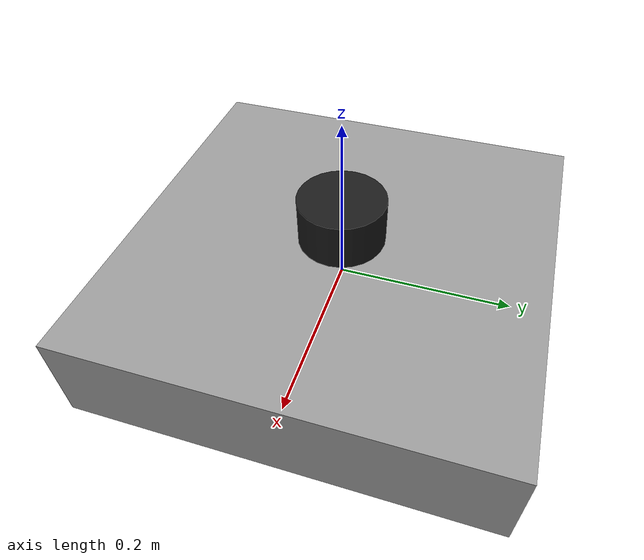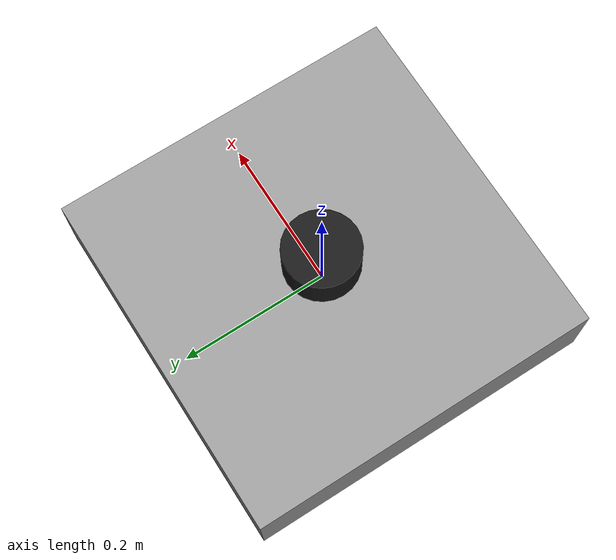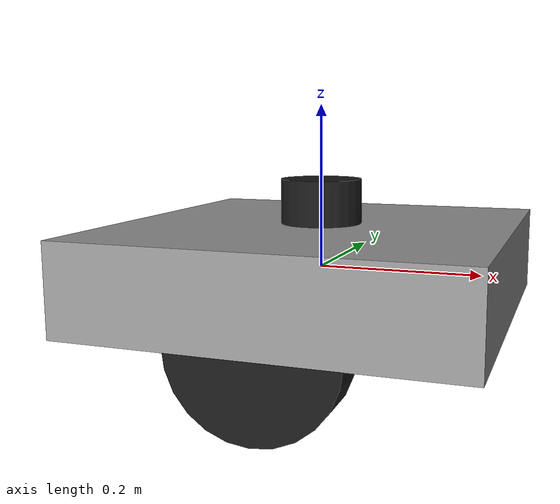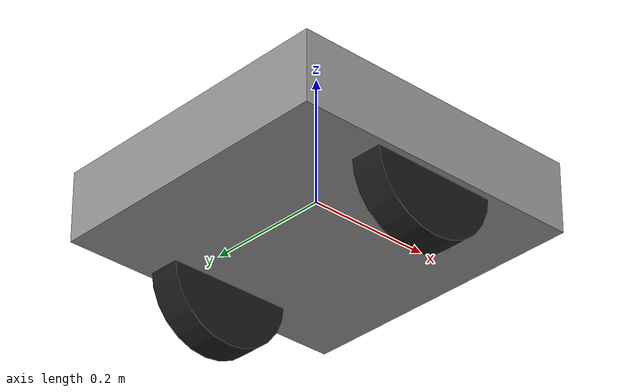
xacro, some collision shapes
<?xml version="1.0"?>
<robot name="drone" xmlns:xacro="http://ros.org/wiki/xacro">

  <!-- Properties -->
  <xacro:property name="PI" value="3.1415926535897931"/>
  <xacro:property name="drone_mass" value="2.0"/>
  <xacro:property name="lidar_mass" value="0.1"/>
  <xacro:property name="imu_mass" value="0.01"/>

  <!-- Materials -->
  <material name="grey">
    <color rgba="0.6 0.6 0.6 1"/>
  </material>

  <material name="black">
    <color rgba="0.1 0.1 0.1 1"/>
  </material>

  <material name="blue">
    <color rgba="0.1 0.1 0.8 1"/>
  </material>

  <!-- Base link (drone body) -->
  <link name="base_link">
    <inertial>
      <mass value="2.0"/>
      <origin xyz="0 0 0" rpy="0 0 0"/>
      <inertia ixx="0.0347563" ixy="0.0" ixz="0.0"
               iyy="0.0458929" iyz="0.0"
               izz="0.0977" />
    </inertial>

    <visual>
      <origin xyz="0 0 0" rpy="0 0 0"/>
      <geometry>
        <mesh filename="package://drone_rl/meshes/quadrotor_base.dae" scale="1 1 1"/>
      </geometry>
    </visual>

    <collision>
      <origin xyz="0 0 0" rpy="0 0 0"/>
      <geometry>
        <box size="0.47 0.47 0.11"/>
      </geometry>
    </collision>
  </link>

  <!-- Simplified visual for when mesh is not available -->
  <link name="base_link_visual">
    <visual>
      <origin xyz="0 0 0" rpy="0 0 0"/>
      <geometry>
        <box size="0.47 0.47 0.11"/>
      </geometry>
      <material name="grey"/>
    </visual>
  </link>

  <joint name="base_visual_joint" type="fixed">
    <parent link="base_link"/>
    <child link="base_link_visual"/>
    <origin xyz="0 0 0" rpy="0 0 0"/>
  </joint>

  <!-- LiDAR sensor -->
  <link name="lidar_link">
    <inertial>
      <mass value="0.1"/>
      <origin xyz="0 0 0" rpy="0 0 0"/>
      <inertia ixx="0.000166667" ixy="0.0" ixz="0.0"
               iyy="0.000166667" iyz="0.0"
               izz="0.000166667"/>
    </inertial>

    <visual>
      <origin xyz="0 0 0" rpy="0 0 0"/>
      <geometry>
        <cylinder radius="0.05" length="0.06"/>
      </geometry>
      <material name="black"/>
    </visual>

    <collision>
      <origin xyz="0 0 0" rpy="0 0 0"/>
      <geometry>
        <cylinder radius="0.05" length="0.06"/>
      </geometry>
    </collision>
  </link>

  <joint name="lidar_joint" type="fixed">
    <parent link="base_link"/>
    <child link="lidar_link"/>
    <origin xyz="0 0 0.08" rpy="0 0 0"/>
  </joint>

  <!-- IMU sensor -->
  <link name="imu_link">
    <inertial>
      <mass value="0.01"/>
      <origin xyz="0 0 0" rpy="0 0 0"/>
      <inertia ixx="0.00001" ixy="0.0" ixz="0.0"
               iyy="0.00001" iyz="0.0"
               izz="0.00001"/>
    </inertial>

    <visual>
      <origin xyz="0 0 0" rpy="0 0 0"/>
      <geometry>
        <box size="0.02 0.02 0.01"/>
      </geometry>
      <material name="blue"/>
    </visual>
  </link>

  <joint name="imu_joint" type="fixed">
    <parent link="base_link"/>
    <child link="imu_link"/>
    <origin xyz="0 0 0" rpy="0 0 0"/>
  </joint>

  <!-- Gazebo plugins and sensors -->

  <!-- LiDAR sensor plugin -->
  <gazebo reference="lidar_link">
    <sensor type="ray" name="lidar">
      <pose>0 0 0 0 0 0</pose>
      <visualize>true</visualize>
      <update_rate>10.0</update_rate>
      <ray>
        <scan>
          <horizontal>
            <samples>720</samples>
            <resolution>1</resolution>
            <min_angle>-3.14159</min_angle>
            <max_angle>3.14159</max_angle>
          </horizontal>
        </scan>
        <range>
          <min>0.1</min>
          <max>10.0</max>
          <resolution>0.01</resolution>
        </range>
        <noise>
          <type>gaussian</type>
          <mean>0.0</mean>
          <stddev>0.01</stddev>
        </noise>
      </ray>

      <plugin name="gazebo_ros_lidar" filename="libgazebo_ros_ray_sensor.so">
        <ros>
          <remapping>~/out:=scan</remapping>
        </ros>
        <output_type>sensor_msgs/LaserScan</output_type>
        <frame_name>lidar_link</frame_name>
      </plugin>
    </sensor>
  </gazebo>

  <!-- IMU sensor plugin -->
  <gazebo reference="imu_link">
    <sensor type="imu" name="imu">
      <always_on>true</always_on>
      <update_rate>100.0</update_rate>
      <visualize>true</visualize>

      <plugin filename="libgazebo_ros_imu_sensor.so" name="imu_plugin">
        <ros>
          <remapping>~/out:=imu</remapping>
        </ros>
        <initial_orientation_as_reference>false</initial_orientation_as_reference>
      </plugin>

      <pose>0 0 0 0 0 0</pose>
    </sensor>
  </gazebo>

  <!-- Differential drive plugin for ground robot movement -->
  <gazebo>
    <plugin name="differential_drive_controller" filename="libgazebo_ros_diff_drive.so">
      <ros>
        <remapping>cmd_vel:=cmd_vel</remapping>
        <remapping>odom:=odom</remapping>
      </ros>

      <!-- wheels -->
      <left_joint>left_wheel_joint</left_joint>
      <right_joint>right_wheel_joint</right_joint>

      <!-- kinematics -->
      <wheel_separation>0.4</wheel_separation>
      <wheel_diameter>0.2</wheel_diameter>

      <!-- limits -->
      <max_wheel_torque>20</max_wheel_torque>
      <max_wheel_acceleration>1.0</max_wheel_acceleration>

      <!-- output -->
      <publish_odom>true</publish_odom>
      <publish_odom_tf>true</publish_odom_tf>
      <publish_wheel_tf>false</publish_wheel_tf>

      <odometry_frame>odom</odometry_frame>
      <robot_base_frame>base_link</robot_base_frame>
    </plugin>
  </gazebo>

  <!-- Planar move plugin for 2D navigation (alternative to diff drive) -->
  <gazebo>
    <plugin name="planar_move" filename="libgazebo_ros_planar_move.so">
      <ros>
        <remapping>cmd_vel:=cmd_vel</remapping>
        <remapping>odom:=odom_planar</remapping>
      </ros>
      <update_rate>100.0</update_rate>
      <publish_rate>10.0</publish_rate>
      <robot_base_frame>base_link</robot_base_frame>
      <odometry_frame>odom</odometry_frame>
      <odometry_topic>odom</odometry_topic>
      <publish_odom_tf>true</publish_odom_tf>
    </plugin>
  </gazebo>

  <!-- Wheels for differential drive (if using diff drive plugin) -->
  <link name="left_wheel">
    <inertial>
      <mass value="0.5"/>
      <origin xyz="0 0 0" rpy="1.5708 0 0"/>
      <inertia ixx="0.00083" ixy="0.0" ixz="0.0"
               iyy="0.00083" iyz="0.0"
               izz="0.00125"/>
    </inertial>
    <visual>
      <origin xyz="0 0 0" rpy="1.5708 0 0"/>
      <geometry>
        <cylinder radius="0.1" length="0.05"/>
      </geometry>
      <material name="black"/>
    </visual>
    <collision>
      <origin xyz="0 0 0" rpy="${PI/2} 0 0"/>
      <geometry>
        <cylinder radius="0.1" length="0.05"/>
      </geometry>
    </collision>
  </link>

  <link name="right_wheel">
    <inertial>
      <mass value="0.5"/>
      <origin xyz="0 0 0" rpy="${PI/2} 0 0"/>
      <inertia ixx="0.00083" ixy="0.0" ixz="0.0"
               iyy="0.00083" iyz="0.0"
               izz="0.00125"/>
    </inertial>
    <visual>
      <origin xyz="0 0 0" rpy="${PI/2} 0 0"/>
      <geometry>
        <cylinder radius="0.1" length="0.05"/>
      </geometry>
      <material name="black"/>
    </visual>
    <collision>
      <origin xyz="0 0 0" rpy="${PI/2} 0 0"/>
      <geometry>
        <cylinder radius="0.1" length="0.05"/>
      </geometry>
    </collision>
  </link>

  <joint name="left_wheel_joint" type="continuous">
    <parent link="base_link"/>
    <child link="left_wheel"/>
    <origin xyz="0 0.2 -0.05" rpy="0 0 0"/>
    <axis xyz="0 1 0"/>
    <dynamics damping="0.2"/>
  </joint>

  <joint name="right_wheel_joint" type="continuous">
    <parent link="base_link"/>
    <child link="right_wheel"/>
    <origin xyz="0 -0.2 -0.05" rpy="0 0 0"/>
    <axis xyz="0 1 0"/>
    <dynamics damping="0.2"/>
  </joint>

  <!-- Gazebo material properties -->
  <gazebo reference="base_link">
    <material>Gazebo/Grey</material>
    <gravity>true</gravity>
  </gazebo>

  <gazebo reference="lidar_link">
    <material>Gazebo/Black</material>
  </gazebo>

  <gazebo reference="left_wheel">
    <material>Gazebo/Black</material>
  </gazebo>

  <gazebo reference="right_wheel">
    <material>Gazebo/Black</material>
  </gazebo>

  <!-- LiDAR Sensor -->
  <gazebo reference="lidar_link">
    <sensor type="ray" name="lidar_sensor">
      <pose>0 0 0 0 0 0</pose>
      <visualize>true</visualize>
      <update_rate>10</update_rate>
      <ray>
        <scan>
          <horizontal>
            <samples>360</samples>
            <resolution>1</resolution>
            <min_angle>-3.14159</min_angle>
            <max_angle>3.14159</max_angle>
          </horizontal>
        </scan>
        <range>
          <min>0.2</min>
          <max>10.0</max>
        </range>
      </ray>
      <plugin name="gazebo_ros_laser" filename="libgazebo_ros_ray_sensor.so">
        <ros>
          <remapping>~/out:=scan</remapping>
        </ros>
        <output_type>sensor_msgs/LaserScan</output_type>
      </plugin>
    </sensor>
  </gazebo>

  <!-- IMU Sensor -->
  <gazebo reference="imu_link">
    <sensor type="imu" name="imu_sensor">
      <update_rate>50</update_rate>
      <plugin name="imu_plugin" filename="libgazebo_ros_imu_sensor.so">
        <ros>
          <namespace>/</namespace>
          <remapping>imu:=/imu</remapping>
        </ros>
      </plugin>
    </sensor>
  </gazebo>

  <!-- Differential Drive Plugin -->
  <gazebo>
    <plugin name="gazebo_ros_diff_drive" filename="libgazebo_ros_diff_drive.so">
      <ros>
        <remapping>cmd_vel:=/cmd_vel</remapping>
        <remapping>odom:=/odom</remapping>
      </ros>
      <update_rate>20.0</update_rate>
      <publish_tf>true</publish_tf>
      <wheel_separation>0.3</wheel_separation>
      <wheel_diameter>0.05</wheel_diameter>
      <left_joint>left_wheel_joint</left_joint>
      <right_joint>right_wheel_joint</right_joint>
    </plugin>
  </gazebo>

</robot>
